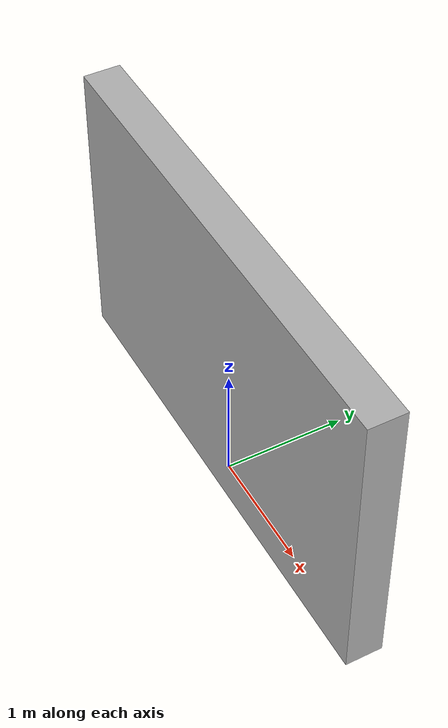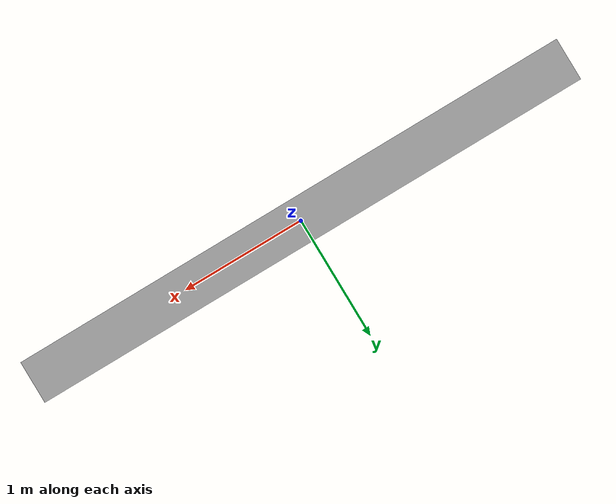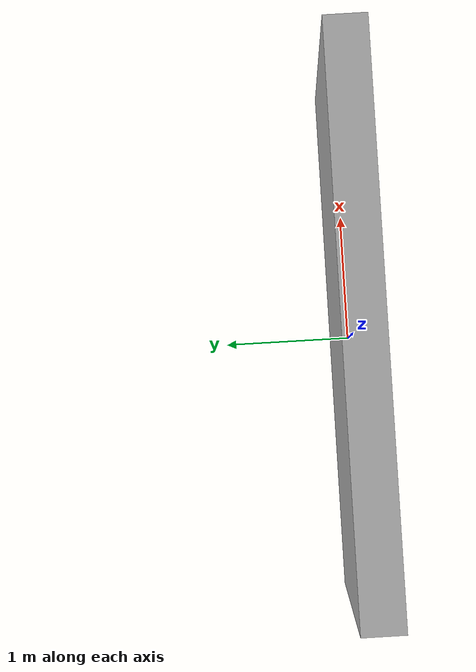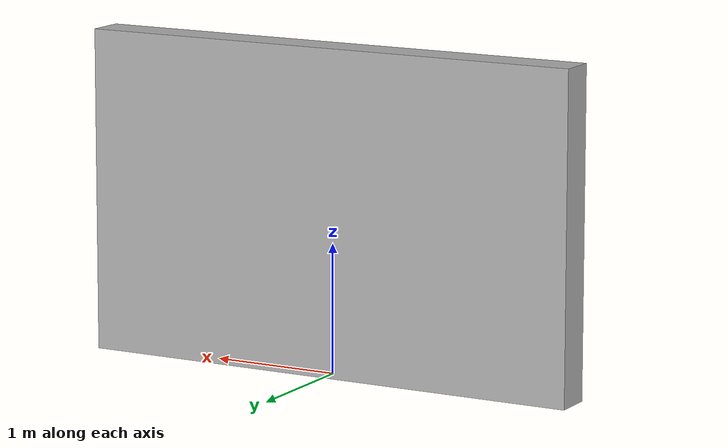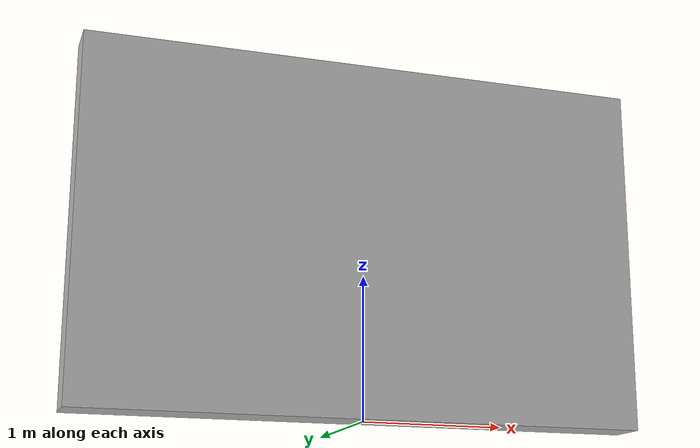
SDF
<?xml version="1.0"?>
<sdf version="1.10">
  <model name="wall_segment">
    <static>true</static>
    <link name="link">
      <collision name="collision">
        <geometry>
          <box>
            <size>4.0 0.3 2.5</size>
          </box>
        </geometry>
      </collision>
      <visual name="visual">
        <geometry>
          <box>
            <size>4.0 0.3 2.5</size>
          </box>
        </geometry>
        <material>
          <ambient>0.6 0.6 0.6 1</ambient>
          <diffuse>0.7 0.7 0.7 1</diffuse>
          <specular>0.3 0.3 0.3 1</specular>
        </material>
      </visual>
      <pose>0 0 1.25 0 0 0</pose>
    </link>
  </model>
</sdf>
